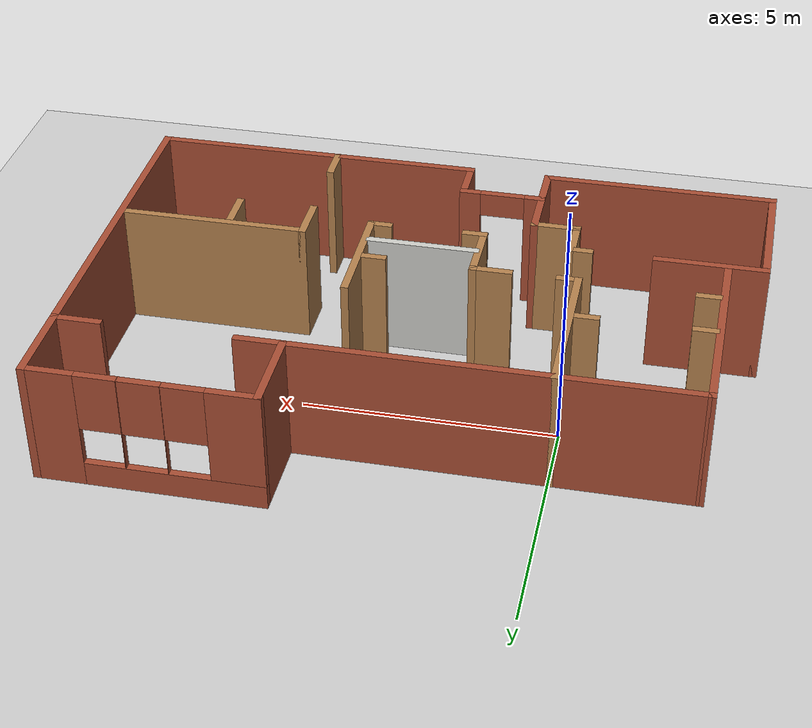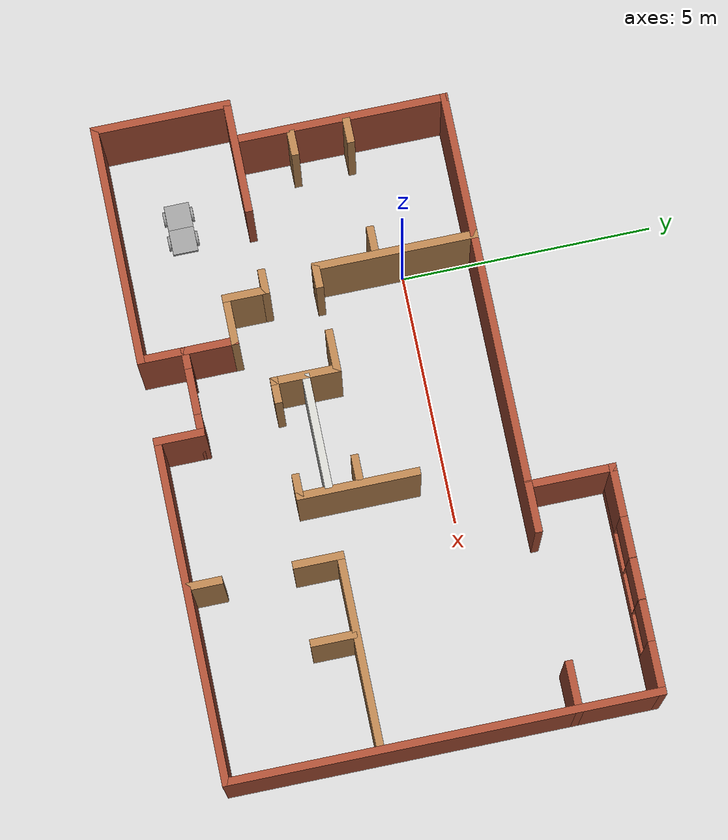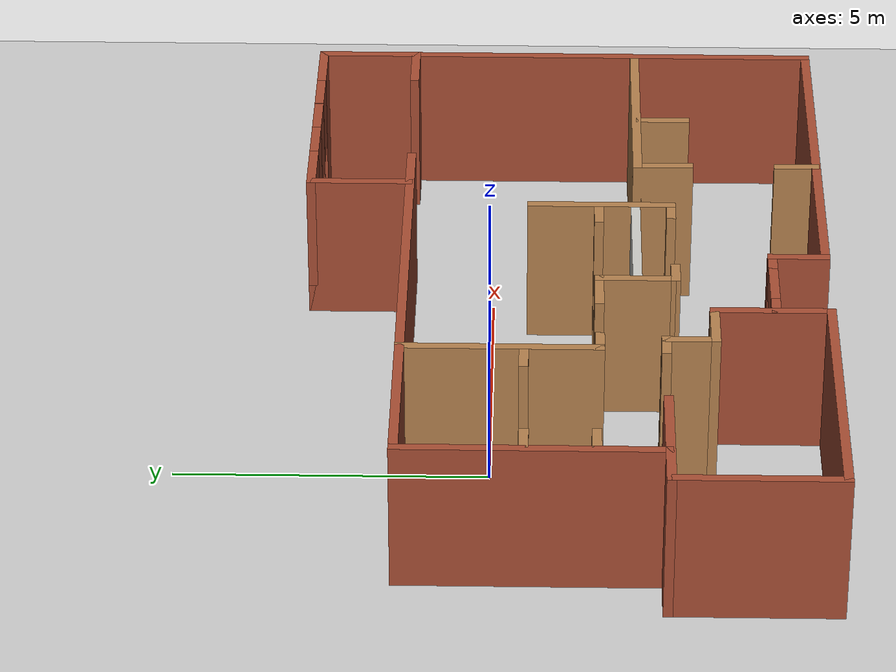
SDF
<sdf version="1.6">
 <world name="default">
  <model name="ground_plane">
   <static>1</static>
   <link name="link">
    <collision name="collision">
     <geometry><plane><normal>0 0 1</normal><size>100 100</size></plane></geometry>
     <surface>
      <contact><collide_bitmask>65535</collide_bitmask></contact>
      <friction><ode><mu>100</mu><mu2>50</mu2></ode></friction>
     </surface>
    </collision>
    <visual name="visual">
     <cast_shadows>0</cast_shadows>
     <geometry><plane><normal>0 0 1</normal><size>100 100</size></plane></geometry>
     <material>
      <script><uri>file://media/materials/scripts/gazebo.material</uri><name>Gazebo/Grey</name></script>
     </material>
    </visual>
   </link>
  </model>
  <model name="building">
   <pose>2.885 -1.15 0 0 -0 0</pose>
   <link name="Wall_0">
    <collision name="Wall_0_Collision">
     <geometry><box><size>2.25 0.15 2.5</size></box></geometry>
     <pose>0 0 1.25 0 -0 0</pose>
    </collision>
    <visual name="Wall_0_Visual">
     <pose>0 0 1.25 0 -0 0</pose>
     <geometry><box><size>2.25 0.15 2.5</size></box></geometry>
     <material>
      <script><uri>file://media/materials/scripts/gazebo.material</uri><name>Gazebo/Bricks</name></script>
      <ambient>1 1 1 1</ambient>
     </material>
     <meta><layer>0</layer></meta>
    </visual>
    <pose>-5.355 -1.58 0 0 -0 3.14159</pose>
   </link>
   <link name="Wall_1">
    <collision name="Wall_1_Collision">
     <geometry><box><size>2.75 0.15 2.5</size></box></geometry>
     <pose>0 0 1.25 0 -0 0</pose>
    </collision>
    <visual name="Wall_1_Visual">
     <pose>0 0 1.25 0 -0 0</pose>
     <geometry><box><size>2.75 0.15 2.5</size></box></geometry>
     <material>
      <script><uri>file://media/materials/scripts/gazebo.material</uri><name>Gazebo/Bricks</name></script>
      <ambient>1 1 1 1</ambient>
     </material>
     <meta><layer>0</layer></meta>
    </visual>
    <pose>-6.405 -2.88 0 0 0 -1.5708</pose>
   </link>
   <link name="Wall_11">
    <collision name="Wall_11_Collision">
     <geometry><box><size>0.5 0.15 2.5</size></box></geometry>
     <pose>0 0 1.25 0 -0 0</pose>
    </collision>
    <visual name="Wall_11_Visual">
     <pose>0 0 1.25 0 -0 0</pose>
     <geometry><box><size>0.5 0.15 2.5</size></box></geometry>
     <material>
      <script><uri>file://media/materials/scripts/gazebo.material</uri><name>Gazebo/Wood</name></script>
      <ambient>1 1 1 1</ambient>
     </material>
     <meta><layer>0</layer></meta>
    </visual>
    <pose>-5.42054 0.610454 0 0 -0 0</pose>
   </link>
   <link name="Wall_13">
    <collision name="Wall_13_Collision">
     <geometry><box><size>3.25 0.15 2.5</size></box></geometry>
     <pose>0 0 1.25 0 -0 0</pose>
    </collision>
    <visual name="Wall_13_Visual">
     <pose>0 0 1.25 0 -0 0</pose>
     <geometry><box><size>3.25 0.15 2.5</size></box></geometry>
     <material>
      <script><uri>file://media/materials/scripts/gazebo.material</uri><name>Gazebo/Wood</name></script>
      <ambient>1 1 1 1</ambient>
     </material>
     <meta><layer>0</layer></meta>
    </visual>
    <pose>-2.915 1 0 0 0 -1.5708</pose>
   </link>
   <link name="Wall_14">
    <collision name="Wall_14_Collision">
     <geometry><box><size>0.5 0.15 2.5</size></box></geometry>
     <pose>0 0 1.25 0 -0 0</pose>
    </collision>
    <visual name="Wall_14_Visual">
     <pose>0 0 1.25 0 -0 0</pose>
     <geometry><box><size>0.5 0.15 2.5</size></box></geometry>
     <material>
      <script><uri>file://media/materials/scripts/gazebo.material</uri><name>Gazebo/Wood</name></script>
      <ambient>1 1 1 1</ambient>
     </material>
     <meta><layer>0</layer></meta>
    </visual>
    <pose>-2.74 -0.55 0 0 -0 0</pose>
   </link>
   <link name="Wall_16">
    <collision name="Wall_16_Collision">
     <geometry><box><size>0.5 0.15 2.5</size></box></geometry>
     <pose>0 0 1.25 0 -0 0</pose>
    </collision>
    <visual name="Wall_16_Visual">
     <pose>0 0 1.25 0 -0 0</pose>
     <geometry><box><size>0.5 0.15 2.5</size></box></geometry>
     <material>
      <script><uri>file://media/materials/scripts/gazebo.material</uri><name>Gazebo/Wood</name></script>
      <ambient>1 1 1 1</ambient>
     </material>
     <meta><layer>0</layer></meta>
    </visual>
    <pose>-5.39507 -0.487783 0 0 -0 0</pose>
   </link>
   <link name="Wall_18">
    <collision name="Wall_18_Collision">
     <geometry><box><size>0.5 0.15 2.5</size></box></geometry>
     <pose>0 0 1.25 0 -0 0</pose>
    </collision>
    <visual name="Wall_18_Visual">
     <pose>0 0 1.25 0 -0 0</pose>
     <geometry><box><size>0.5 0.15 2.5</size></box></geometry>
     <material>
      <script><uri>file://media/materials/scripts/gazebo.material</uri><name>Gazebo/Wood</name></script>
      <ambient>1 1 1 1</ambient>
     </material>
     <meta><layer>0</layer></meta>
    </visual>
    <pose>-3.22609 0.62703 0 0 -0 3.14159</pose>
   </link>
   <link name="Wall_2">
    <collision name="Wall_2_Collision">
     <geometry><box><size>4.75 0.15 2.5</size></box></geometry>
     <pose>0 0 1.25 0 -0 0</pose>
    </collision>
    <visual name="Wall_2_Visual">
     <pose>0 0 1.25 0 -0 0</pose>
     <geometry><box><size>4.75 0.15 2.5</size></box></geometry>
     <material>
      <script><uri>file://media/materials/scripts/gazebo.material</uri><name>Gazebo/Bricks</name></script>
      <ambient>1 1 1 1</ambient>
     </material>
     <meta><layer>0</layer></meta>
    </visual>
    <pose>-4.105 -4.18 0 0 -0 0</pose>
   </link>
   <link name="Wall_20">
    <pose>-0.995 -3.32 0 0 -0 0</pose>
    <visual name="Wall_20_Visual_0">
     <pose>-0.666369 0 1.25 0 -0 0</pose>
     <geometry><box><size>0.417262 0.15 2.5</size></box></geometry>
     <material>
      <script><uri>file://media/materials/scripts/gazebo.material</uri><name>Gazebo/Bricks</name></script>
      <ambient>1 1 1 1</ambient>
     </material>
     <meta><layer>0</layer></meta>
    </visual>
    <collision name="Wall_20_Collision_0">
     <geometry><box><size>0.417262 0.15 2.5</size></box></geometry>
     <pose>-0.666369 0 1.25 0 -0 0</pose>
    </collision>
    <visual name="Wall_20_Visual_1">
     <pose>0.658631 0 1.25 0 -0 0</pose>
     <geometry><box><size>0.432738 0.15 2.5</size></box></geometry>
     <material>
      <script><uri>file://media/materials/scripts/gazebo.material</uri><name>Gazebo/Bricks</name></script>
      <ambient>1 1 1 1</ambient>
     </material>
     <meta><layer>0</layer></meta>
    </visual>
    <collision name="Wall_20_Collision_1">
     <geometry><box><size>0.432738 0.15 2.5</size></box></geometry>
     <pose>0.658631 0 1.25 0 -0 0</pose>
    </collision>
    <visual name="Wall_20_Visual_2">
     <pose>-0.007738 0 2.25 0 -0 0</pose>
     <geometry><box><size>0.9 0.15 0.5</size></box></geometry>
     <material>
      <script><uri>file://media/materials/scripts/gazebo.material</uri><name>Gazebo/Bricks</name></script>
      <ambient>1 1 1 1</ambient>
     </material>
     <meta><layer>0</layer></meta>
    </visual>
    <collision name="Wall_20_Collision_2">
     <geometry><box><size>0.9 0.15 0.5</size></box></geometry>
     <pose>-0.007738 0 2.25 0 -0 0</pose>
    </collision>
   </link>
   <link name="Wall_21">
    <collision name="Wall_21_Collision">
     <geometry><box><size>1 0.15 2.5</size></box></geometry>
     <pose>0 0 1.25 0 -0 0</pose>
    </collision>
    <visual name="Wall_21_Visual">
     <pose>0 0 1.25 0 -0 0</pose>
     <geometry><box><size>1 0.15 2.5</size></box></geometry>
     <material>
      <script><uri>file://media/materials/scripts/gazebo.material</uri><name>Gazebo/Bricks</name></script>
      <ambient>1 1 1 1</ambient>
     </material>
     <meta><layer>0</layer></meta>
    </visual>
    <pose>-0.195 -3.745 0 0 0 -1.5708</pose>
   </link>
   <link name="Wall_22">
    <collision name="Wall_22_Collision">
     <geometry><box><size>6.75 0.15 2.5</size></box></geometry>
     <pose>0 0 1.25 0 -0 0</pose>
    </collision>
    <visual name="Wall_22_Visual">
     <pose>0 0 1.25 0 -0 0</pose>
     <geometry><box><size>6.75 0.15 2.5</size></box></geometry>
     <material>
      <script><uri>file://media/materials/scripts/gazebo.material</uri><name>Gazebo/Bricks</name></script>
      <ambient>1 1 1 1</ambient>
     </material>
     <meta><layer>0</layer></meta>
    </visual>
    <pose>3.105 -4.17 0 0 -0 0</pose>
   </link>
   <link name="Wall_23">
    <collision name="Wall_23_Collision">
     <geometry><box><size>8.5 0.15 2.5</size></box></geometry>
     <pose>0 0 1.25 0 -0 0</pose>
    </collision>
    <visual name="Wall_23_Visual">
     <pose>0 0 1.25 0 -0 0</pose>
     <geometry><box><size>8.5 0.15 2.5</size></box></geometry>
     <material>
      <script><uri>file://media/materials/scripts/gazebo.material</uri><name>Gazebo/Bricks</name></script>
      <ambient>1 1 1 1</ambient>
     </material>
     <meta><layer>0</layer></meta>
    </visual>
    <pose>6.405 0.005 0 0 -0 1.5708</pose>
   </link>
   <link name="Wall_25">
    <pose>4.23 4.18 0 0 -0 3.14159</pose>
    <visual name="Wall_25_Visual_0">
     <pose>-1.7302 0 1.25 0 -0 0</pose>
     <geometry><box><size>1.0396 0.15 2.5</size></box></geometry>
     <material>
      <script><uri>file://media/materials/scripts/gazebo.material</uri><name>Gazebo/Bricks</name></script>
      <ambient>1 1 1 1</ambient>
     </material>
     <meta><layer>0</layer></meta>
    </visual>
    <collision name="Wall_25_Collision_0">
     <geometry><box><size>1.0396 0.15 2.5</size></box></geometry>
     <pose>-1.7302 0 1.25 0 -0 0</pose>
    </collision>
    <visual name="Wall_25_Visual_1">
     <pose>0.519799 0 0.25 0 -0 0</pose>
     <geometry><box><size>3.4604 0.15 0.5</size></box></geometry>
     <material>
      <script><uri>file://media/materials/scripts/gazebo.material</uri><name>Gazebo/Bricks</name></script>
      <ambient>1 1 1 1</ambient>
     </material>
     <meta><layer>0</layer></meta>
    </visual>
    <collision name="Wall_25_Collision_1">
     <geometry><box><size>3.4604 0.15 0.5</size></box></geometry>
     <pose>0.519799 0 0.25 0 -0 0</pose>
    </collision>
    <visual name="Wall_25_Visual_2">
     <pose>-0.403907 0 1.5 0 -0 0</pose>
     <geometry><box><size>0.01299 0.15 2</size></box></geometry>
     <material>
      <script><uri>file://media/materials/scripts/gazebo.material</uri><name>Gazebo/Bricks</name></script>
      <ambient>1 1 1 1</ambient>
     </material>
     <meta><layer>0</layer></meta>
    </visual>
    <collision name="Wall_25_Collision_2">
     <geometry><box><size>0.01299 0.15 2</size></box></geometry>
     <pose>-0.403907 0 1.5 0 -0 0</pose>
    </collision>
    <visual name="Wall_25_Visual_3">
     <pose>0.406241 0 1.5 0 -0 0</pose>
     <geometry><box><size>0.007305 0.15 2</size></box></geometry>
     <material>
      <script><uri>file://media/materials/scripts/gazebo.material</uri><name>Gazebo/Bricks</name></script>
      <ambient>1 1 1 1</ambient>
     </material>
     <meta><layer>0</layer></meta>
    </visual>
    <collision name="Wall_25_Collision_3">
     <geometry><box><size>0.007305 0.15 2</size></box></geometry>
     <pose>0.406241 0 1.5 0 -0 0</pose>
    </collision>
    <visual name="Wall_25_Visual_4">
     <pose>1.72995 0 1.5 0 -0 0</pose>
     <geometry><box><size>1.04011 0.15 2</size></box></geometry>
     <material>
      <script><uri>file://media/materials/scripts/gazebo.material</uri><name>Gazebo/Bricks</name></script>
      <ambient>1 1 1 1</ambient>
     </material>
     <meta><layer>0</layer></meta>
    </visual>
    <collision name="Wall_25_Collision_4">
     <geometry><box><size>1.04011 0.15 2</size></box></geometry>
     <pose>1.72995 0 1.5 0 -0 0</pose>
    </collision>
    <visual name="Wall_25_Visual_5">
     <pose>-0.810402 0 1.9 0 -0 0</pose>
     <geometry><box><size>0.8 0.15 1.2</size></box></geometry>
     <material>
      <script><uri>file://media/materials/scripts/gazebo.material</uri><name>Gazebo/Bricks</name></script>
      <ambient>1 1 1 1</ambient>
     </material>
     <meta><layer>0</layer></meta>
    </visual>
    <collision name="Wall_25_Collision_5">
     <geometry><box><size>0.8 0.15 1.2</size></box></geometry>
     <pose>-0.810402 0 1.9 0 -0 0</pose>
    </collision>
    <visual name="Wall_25_Visual_6">
     <pose>0.002588 0 1.9 0 -0 0</pose>
     <geometry><box><size>0.8 0.15 1.2</size></box></geometry>
     <material>
      <script><uri>file://media/materials/scripts/gazebo.material</uri><name>Gazebo/Bricks</name></script>
      <ambient>1 1 1 1</ambient>
     </material>
     <meta><layer>0</layer></meta>
    </visual>
    <collision name="Wall_25_Collision_6">
     <geometry><box><size>0.8 0.15 1.2</size></box></geometry>
     <pose>0.002588 0 1.9 0 -0 0</pose>
    </collision>
    <visual name="Wall_25_Visual_7">
     <pose>0.809894 0 1.9 0 -0 0</pose>
     <geometry><box><size>0.8 0.15 1.2</size></box></geometry>
     <material>
      <script><uri>file://media/materials/scripts/gazebo.material</uri><name>Gazebo/Bricks</name></script>
      <ambient>1 1 1 1</ambient>
     </material>
     <meta><layer>0</layer></meta>
    </visual>
    <collision name="Wall_25_Collision_7">
     <geometry><box><size>0.8 0.15 1.2</size></box></geometry>
     <pose>0.809894 0 1.9 0 -0 0</pose>
    </collision>
   </link>
   <link name="Wall_26">
    <collision name="Wall_26_Collision">
     <geometry><box><size>1.75 0.15 2.5</size></box></geometry>
     <pose>0 0 1.25 0 -0 0</pose>
    </collision>
    <visual name="Wall_26_Visual">
     <pose>0 0 1.25 0 -0 0</pose>
     <geometry><box><size>1.75 0.15 2.5</size></box></geometry>
     <material>
      <script><uri>file://media/materials/scripts/gazebo.material</uri><name>Gazebo/Bricks</name></script>
      <ambient>1 1 1 1</ambient>
     </material>
     <meta><layer>0</layer></meta>
    </visual>
    <pose>2.055 3.38 0 0 0 -1.5708</pose>
   </link>
   <link name="Wall_28">
    <collision name="Wall_28_Collision">
     <geometry><box><size>1 0.15 2.5</size></box></geometry>
     <pose>0 0 1.25 0 -0 0</pose>
    </collision>
    <visual name="Wall_28_Visual">
     <pose>0 0 1.25 0 -0 0</pose>
     <geometry><box><size>1 0.15 2.5</size></box></geometry>
     <material>
      <script><uri>file://media/materials/scripts/gazebo.material</uri><name>Gazebo/Bricks</name></script>
      <ambient>1 1 1 1</ambient>
     </material>
     <meta><layer>0</layer></meta>
    </visual>
    <pose>5.98 2.58 0 0 -0 3.14159</pose>
   </link>
   <link name="Wall_3">
    <collision name="Wall_3_Collision">
     <geometry><box><size>1.98 0.15 2.5</size></box></geometry>
     <pose>0 0 1.25 0 -0 0</pose>
    </collision>
    <visual name="Wall_3_Visual">
     <pose>0 0 1.25 0 -0 0</pose>
     <geometry><box><size>1.98 0.15 2.5</size></box></geometry>
     <material>
      <script><uri>file://media/materials/scripts/gazebo.material</uri><name>Gazebo/Bricks</name></script>
      <ambient>1 1 1 1</ambient>
     </material>
     <meta><layer>0</layer></meta>
    </visual>
    <pose>-1.805 -3.265 0 0 -0 1.5708</pose>
   </link>
   <link name="Wall_30">
    <collision name="Wall_30_Collision">
     <geometry><box><size>0.75 0.15 2.5</size></box></geometry>
     <pose>0 0 1.25 0 -0 0</pose>
    </collision>
    <visual name="Wall_30_Visual">
     <pose>0 0 1.25 0 -0 0</pose>
     <geometry><box><size>0.75 0.15 2.5</size></box></geometry>
     <material>
      <script><uri>file://media/materials/scripts/gazebo.material</uri><name>Gazebo/Wood</name></script>
      <ambient>1 1 1 1</ambient>
     </material>
     <meta><layer>0</layer></meta>
    </visual>
    <pose>2.655 -3.85 0 0 -0 1.5708</pose>
   </link>
   <link name="Wall_32">
    <collision name="Wall_32_Collision">
     <geometry><box><size>1 0.15 2.5</size></box></geometry>
     <pose>0 0 1.25 0 -0 0</pose>
    </collision>
    <visual name="Wall_32_Visual">
     <pose>0 0 1.25 0 -0 0</pose>
     <geometry><box><size>1 0.15 2.5</size></box></geometry>
     <material>
      <script><uri>file://media/materials/scripts/gazebo.material</uri><name>Gazebo/Wood</name></script>
      <ambient>1 1 1 1</ambient>
     </material>
     <meta><layer>0</layer></meta>
    </visual>
    <pose>2.655 -1.635 0 0 -0 1.5708</pose>
   </link>
   <link name="Wall_33">
    <collision name="Wall_33_Collision">
     <geometry><box><size>3.75 0.15 2.5</size></box></geometry>
     <pose>0 0 1.25 0 -0 0</pose>
    </collision>
    <visual name="Wall_33_Visual">
     <pose>0 0 1.25 0 -0 0</pose>
     <geometry><box><size>3.75 0.15 2.5</size></box></geometry>
     <material>
      <script><uri>file://media/materials/scripts/gazebo.material</uri><name>Gazebo/Wood</name></script>
      <ambient>1 1 1 1</ambient>
     </material>
     <meta><layer>0</layer></meta>
    </visual>
    <pose>4.455 -1.21 0 0 -0 0</pose>
   </link>
   <link name="Wall_35">
    <collision name="Wall_35_Collision">
     <geometry><box><size>0.9 0.15 2.5</size></box></geometry>
     <pose>0 0 1.25 0 -0 0</pose>
    </collision>
    <visual name="Wall_35_Visual">
     <pose>0 0 1.25 0 -0 0</pose>
     <geometry><box><size>0.9 0.15 2.5</size></box></geometry>
     <material>
      <script><uri>file://media/materials/scripts/gazebo.material</uri><name>Gazebo/Wood</name></script>
      <ambient>1 1 1 1</ambient>
     </material>
     <meta><layer>0</layer></meta>
    </visual>
    <pose>4.17527 -1.65644 0 0 0 -1.5708</pose>
   </link>
   <link name="Wall_37">
    <collision name="Wall_37_Collision">
     <geometry><box><size>0.846 0.15 2.5</size></box></geometry>
     <pose>0 0 1.25 0 -0 0</pose>
    </collision>
    <visual name="Wall_37_Visual">
     <pose>0 0 1.25 0 -0 0</pose>
     <geometry><box><size>0.846 0.15 2.5</size></box></geometry>
     <material>
      <script><uri>file://media/materials/scripts/gazebo.material</uri><name>Gazebo/Wood</name></script>
      <ambient>1 1 1 1</ambient>
     </material>
     <meta><layer>0</layer></meta>
    </visual>
    <pose>-1.233 -0.55 0 0 -0 0</pose>
   </link>
   <link name="Wall_38">
    <collision name="Wall_38_Collision">
     <geometry><box><size>1.36702 0.15 2.5</size></box></geometry>
     <pose>0 0 1.25 0 -0 0</pose>
    </collision>
    <visual name="Wall_38_Visual">
     <pose>0 0 1.25 0 -0 0</pose>
     <geometry><box><size>1.36702 0.15 2.5</size></box></geometry>
     <material>
      <script><uri>file://media/materials/scripts/gazebo.material</uri><name>Gazebo/Wood</name></script>
      <ambient>1 1 1 1</ambient>
     </material>
     <meta><layer>0</layer></meta>
    </visual>
    <pose>-0.885 -1.1585 0 0 0 -1.5708</pose>
   </link>
   <link name="Wall_39">
    <collision name="Wall_39_Collision">
     <geometry><box><size>0.509293 0.15 2.5</size></box></geometry>
     <pose>0 0 1.25 0 -0 0</pose>
    </collision>
    <visual name="Wall_39_Visual">
     <pose>0 0 1.25 0 -0 0</pose>
     <geometry><box><size>0.509293 0.15 2.5</size></box></geometry>
     <material>
      <script><uri>file://media/materials/scripts/gazebo.material</uri><name>Gazebo/Wood</name></script>
      <ambient>1 1 1 1</ambient>
     </material>
     <meta><layer>0</layer></meta>
    </visual>
    <pose>-0.705354 -1.7669 0 0 -0 0.000544</pose>
   </link>
   <link name="Wall_4">
    <collision name="Wall_4_Collision">
     <geometry><box><size>1 0.15 2.5</size></box></geometry>
     <pose>0 0 1.25 0 -0 0</pose>
    </collision>
    <visual name="Wall_4_Visual">
     <pose>0 0 1.25 0 -0 0</pose>
     <geometry><box><size>1 0.15 2.5</size></box></geometry>
     <material>
      <script><uri>file://media/materials/scripts/gazebo.material</uri><name>Gazebo/Wood</name></script>
      <ambient>1 1 1 1</ambient>
     </material>
     <meta><layer>0</layer></meta>
    </visual>
    <pose>-2.23 -2.35 0 0 -0 3.14159</pose>
   </link>
   <link name="Wall_41">
    <collision name="Wall_41_Collision">
     <geometry><box><size>0.5 0.15 2.5</size></box></geometry>
     <pose>0 0 1.25 0 -0 0</pose>
    </collision>
    <visual name="Wall_41_Visual">
     <pose>0 0 1.25 0 -0 0</pose>
     <geometry><box><size>0.5 0.15 2.5</size></box></geometry>
     <material>
      <script><uri>file://media/materials/scripts/gazebo.material</uri><name>Gazebo/Wood</name></script>
      <ambient>1 1 1 1</ambient>
     </material>
     <meta><layer>0</layer></meta>
    </visual>
    <pose>1.20247 -1.73362 0 0 -0 0</pose>
   </link>
   <link name="Wall_42">
    <collision name="Wall_42_Collision">
     <geometry><box><size>2.40993 0.15 2.5</size></box></geometry>
     <pose>0 0 1.25 0 -0 0</pose>
    </collision>
    <visual name="Wall_42_Visual">
     <pose>0 0 1.25 0 -0 0</pose>
     <geometry><box><size>2.40993 0.15 2.5</size></box></geometry>
     <material>
      <script><uri>file://media/materials/scripts/gazebo.material</uri><name>Gazebo/Wood</name></script>
      <ambient>1 1 1 1</ambient>
     </material>
     <meta><layer>0</layer></meta>
    </visual>
    <pose>1.38031 -0.603662 0 0 -0 1.57331</pose>
   </link>
   <link name="Wall_44">
    <collision name="Wall_44_Collision">
     <geometry><box><size>2.25 0.15 2.5</size></box></geometry>
     <pose>0 0 1.25 0 -0 0</pose>
    </collision>
    <visual name="Wall_44_Visual">
     <pose>0 0 1.25 0 -0 0</pose>
     <geometry><box><size>2.25 0.15 2.5</size></box></geometry>
     <material>
      <script><uri>file://media/materials/scripts/gazebo.material</uri><name>Gazebo/CeilingTiled</name></script>
      <ambient>1 1 1 1</ambient>
     </material>
     <meta><layer>0</layer></meta>
    </visual>
    <pose>0.223792 -1.16 0 0 -0 0</pose>
   </link>
   <link name="Wall_46">
    <collision name="Wall_46_Collision">
     <geometry><box><size>0.5 0.15 2.5</size></box></geometry>
     <pose>0 0 1.25 0 -0 0</pose>
    </collision>
    <visual name="Wall_46_Visual">
     <pose>0 0 1.25 0 -0 0</pose>
     <geometry><box><size>0.5 0.15 2.5</size></box></geometry>
     <material>
      <script><uri>file://media/materials/scripts/gazebo.material</uri><name>Gazebo/Wood</name></script>
      <ambient>1 1 1 1</ambient>
     </material>
     <meta><layer>0</layer></meta>
    </visual>
    <pose>1.06568 -0.560964 0 0 -0 3.14159</pose>
   </link>
   <link name="Wall_5">
    <collision name="Wall_5_Collision">
     <geometry><box><size>0.92 0.15 2.5</size></box></geometry>
     <pose>0 0 1.25 0 -0 0</pose>
    </collision>
    <visual name="Wall_5_Visual">
     <pose>0 0 1.25 0 -0 0</pose>
     <geometry><box><size>0.92 0.15 2.5</size></box></geometry>
     <material>
      <script><uri>file://media/materials/scripts/gazebo.material</uri><name>Gazebo/Wood</name></script>
      <ambient>1 1 1 1</ambient>
     </material>
     <meta><layer>0</layer></meta>
    </visual>
    <pose>-2.655 -1.965 0 0 -0 1.5708</pose>
   </link>
   <link name="Wall_6">
    <collision name="Wall_6_Collision">
     <geometry><box><size>0.493495 0.15 2.5</size></box></geometry>
     <pose>0 0 1.25 0 -0 0</pose>
    </collision>
    <visual name="Wall_6_Visual">
     <pose>0 0 1.25 0 -0 0</pose>
     <geometry><box><size>0.493495 0.15 2.5</size></box></geometry>
     <material>
      <script><uri>file://media/materials/scripts/gazebo.material</uri><name>Gazebo/Wood</name></script>
      <ambient>1 1 1 1</ambient>
     </material>
     <meta><layer>0</layer></meta>
    </visual>
    <pose>-2.8265 -1.58 0 0 -0 3.14159</pose>
   </link>
   <link name="Wall_8">
    <collision name="Wall_8_Collision">
     <geometry><box><size>4.25 0.15 2.5</size></box></geometry>
     <pose>0 0 1.25 0 -0 0</pose>
    </collision>
    <visual name="Wall_8_Visual">
     <pose>0 0 1.25 0 -0 0</pose>
     <geometry><box><size>4.25 0.15 2.5</size></box></geometry>
     <material>
      <script><uri>file://media/materials/scripts/gazebo.material</uri><name>Gazebo/Bricks</name></script>
      <ambient>1 1 1 1</ambient>
     </material>
     <meta><layer>0</layer></meta>
    </visual>
    <pose>-5.685 0.5 0 0 -0 1.5708</pose>
   </link>
   <link name="Wall_9">
    <collision name="Wall_9_Collision">
     <geometry><box><size>8.75 0.15 2.5</size></box></geometry>
     <pose>0 0 1.25 0 -0 0</pose>
    </collision>
    <visual name="Wall_9_Visual">
     <pose>0 0 1.25 0 -0 0</pose>
     <geometry><box><size>8.75 0.15 2.5</size></box></geometry>
     <material>
      <script><uri>file://media/materials/scripts/gazebo.material</uri><name>Gazebo/Bricks</name></script>
      <ambient>1 1 1 1</ambient>
     </material>
     <meta><layer>0</layer></meta>
    </visual>
    <pose>-1.385 2.55 0 0 -0 0</pose>
   </link>
   <static>1</static>
  </model>
  <model name="cart_clone">
   <link name="link_0_clone">
    <pose>-0.250001 -0 0 0 -0 0</pose>
    <inertial>
     <mass>1</mass>
     <inertia>
      <ixx>0.166667</ixx>
      <ixy>0</ixy>
      <ixz>0</ixz>
      <iyy>0.166667</iyy>
      <iyz>0</iyz>
      <izz>0.166667</izz>
     </inertia>
    </inertial>
    <visual name="visual">
     <geometry><box><size>0.5 0.5 0.1</size></box></geometry>
     <material>
      <lighting>1</lighting>
      <script><uri>file://media/materials/scripts/gazebo.material</uri><name>Gazebo/Grey</name></script>
      <shader type="pixel"><normal_map>__default__</normal_map></shader>
      <ambient>0.3 0.3 0.3 1</ambient>
      <diffuse>0.7 0.7 0.7 1</diffuse>
      <specular>0.01 0.01 0.01 1</specular>
      <emissive>0 0 0 1</emissive>
     </material>
    </visual>
    <collision name="collision">
     <geometry><box><size>0.5 0.5 0.1</size></box></geometry>
     <surface>
      <friction>
       <ode><mu>1</mu><mu2>1</mu2><fdir1>0 0 0</fdir1><slip1>0</slip1><slip2>0</slip2></ode>
       <torsional>
        <coefficient>1</coefficient>
        <patch_radius>0</patch_radius>
        <surface_radius>0</surface_radius>
        <use_patch_radius>1</use_patch_radius>
        <ode><slip>0</slip></ode>
       </torsional>
      </friction>
      <bounce><restitution_coefficient>0</restitution_coefficient><threshold>1e+06</threshold></bounce>
      <contact>
       <collide_without_contact>0</collide_without_contact>
       <collide_without_contact_bitmask>1</collide_without_contact_bitmask>
       <collide_bitmask>1</collide_bitmask>
       <ode>
        <soft_cfm>0</soft_cfm>
        <soft_erp>0.2</soft_erp>
        <kp>1e+13</kp>
        <kd>1</kd>
        <max_vel>0.01</max_vel>
        <min_depth>0</min_depth>
       </ode>
       <bullet>
        <split_impulse>1</split_impulse>
        <split_impulse_penetration_threshold>-0.01</split_impulse_penetration_threshold>
        <soft_cfm>0</soft_cfm>
        <soft_erp>0.2</soft_erp>
        <kp>1e+13</kp>
        <kd>1</kd>
       </bullet>
      </contact>
     </surface>
    </collision>
   </link>
   <link name="link_0_clone_0">
    <pose>0.249999 -0 0 0 -0 0</pose>
    <inertial>
     <mass>1</mass>
     <inertia>
      <ixx>0.166667</ixx>
      <ixy>0</ixy>
      <ixz>0</ixz>
      <iyy>0.166667</iyy>
      <iyz>0</iyz>
      <izz>0.166667</izz>
     </inertia>
    </inertial>
    <visual name="visual">
     <geometry><box><size>0.5 0.5 0.1</size></box></geometry>
     <material>
      <lighting>1</lighting>
      <script><uri>file://media/materials/scripts/gazebo.material</uri><name>Gazebo/Grey</name></script>
      <shader type="pixel"><normal_map>__default__</normal_map></shader>
      <ambient>0.3 0.3 0.3 1</ambient>
      <diffuse>0.7 0.7 0.7 1</diffuse>
      <specular>0.01 0.01 0.01 1</specular>
      <emissive>0 0 0 1</emissive>
     </material>
    </visual>
    <collision name="collision">
     <geometry><box><size>0.5 0.5 0.1</size></box></geometry>
     <surface>
      <friction>
       <ode><mu>1</mu><mu2>1</mu2><fdir1>0 0 0</fdir1><slip1>0</slip1><slip2>0</slip2></ode>
       <torsional>
        <coefficient>1</coefficient>
        <patch_radius>0</patch_radius>
        <surface_radius>0</surface_radius>
        <use_patch_radius>1</use_patch_radius>
        <ode><slip>0</slip></ode>
       </torsional>
      </friction>
      <bounce><restitution_coefficient>0</restitution_coefficient><threshold>1e+06</threshold></bounce>
      <contact>
       <collide_without_contact>0</collide_without_contact>
       <collide_without_contact_bitmask>1</collide_without_contact_bitmask>
       <collide_bitmask>1</collide_bitmask>
       <ode>
        <soft_cfm>0</soft_cfm>
        <soft_erp>0.2</soft_erp>
        <kp>1e+13</kp>
        <kd>1</kd>
        <max_vel>0.01</max_vel>
        <min_depth>0</min_depth>
       </ode>
       <bullet>
        <split_impulse>1</split_impulse>
        <split_impulse_penetration_threshold>-0.01</split_impulse_penetration_threshold>
        <soft_cfm>0</soft_cfm>
        <soft_erp>0.2</soft_erp>
        <kp>1e+13</kp>
        <kd>1</kd>
       </bullet>
      </contact>
     </surface>
    </collision>
   </link>
   <link name="link_1_clone">
    <pose>-0.250001 -0.275119 0 0 -0 0</pose>
    <inertial>
     <mass>1</mass>
     <inertia><ixx>0.145833</ixx><ixy>0</ixy><ixz>0</ixz><iyy>0.145833</iyy><iyz>0</iyz><izz>0.125</izz></inertia>
    </inertial>
    <visual name="visual">
     <pose>0 0 0 1.57 -0 0</pose>
     <geometry><cylinder><radius>0.15</radius><length>0.05</length></cylinder></geometry>
     <material>
      <lighting>1</lighting>
      <script><uri>file://media/materials/scripts/gazebo.material</uri><name>Gazebo/Grey</name></script>
      <shader type="pixel"><normal_map>__default__</normal_map></shader>
      <ambient>0.3 0.3 0.3 1</ambient>
      <diffuse>0.7 0.7 0.7 1</diffuse>
      <specular>0.01 0.01 0.01 1</specular>
      <emissive>0 0 0 1</emissive>
     </material>
    </visual>
    <collision name="collision">
     <pose>0 0 0 1.5707 -0 0</pose>
     <geometry><cylinder><radius>0.15</radius><length>0.05</length></cylinder></geometry>
     <surface>
      <friction>
       <ode><mu>1</mu><mu2>1</mu2><fdir1>0 0 0</fdir1><slip1>0</slip1><slip2>0</slip2></ode>
       <torsional>
        <coefficient>1</coefficient>
        <patch_radius>0</patch_radius>
        <surface_radius>0</surface_radius>
        <use_patch_radius>1</use_patch_radius>
        <ode><slip>0</slip></ode>
       </torsional>
      </friction>
      <bounce><restitution_coefficient>0</restitution_coefficient><threshold>1e+06</threshold></bounce>
      <contact>
       <collide_without_contact>0</collide_without_contact>
       <collide_without_contact_bitmask>1</collide_without_contact_bitmask>
       <collide_bitmask>1</collide_bitmask>
       <ode>
        <soft_cfm>0</soft_cfm>
        <soft_erp>0.2</soft_erp>
        <kp>1e+13</kp>
        <kd>1</kd>
        <max_vel>0.01</max_vel>
        <min_depth>0</min_depth>
       </ode>
       <bullet>
        <split_impulse>1</split_impulse>
        <split_impulse_penetration_threshold>-0.01</split_impulse_penetration_threshold>
        <soft_cfm>0</soft_cfm>
        <soft_erp>0.2</soft_erp>
        <kp>1e+13</kp>
        <kd>1</kd>
       </bullet>
      </contact>
     </surface>
    </collision>
   </link>
   <link name="link_1_clone_0">
    <pose>-0.250001 0.275119 0 0 -0 0</pose>
    <inertial>
     <mass>1</mass>
     <inertia><ixx>0.145833</ixx><ixy>0</ixy><ixz>0</ixz><iyy>0.145833</iyy><iyz>0</iyz><izz>0.125</izz></inertia>
    </inertial>
    <visual name="visual">
     <pose>0 0 0 1.57 -0 0</pose>
     <geometry><cylinder><radius>0.15</radius><length>0.05</length></cylinder></geometry>
     <material>
      <lighting>1</lighting>
      <script><uri>file://media/materials/scripts/gazebo.material</uri><name>Gazebo/Grey</name></script>
      <shader type="pixel"><normal_map>__default__</normal_map></shader>
      <ambient>0.3 0.3 0.3 1</ambient>
      <diffuse>0.7 0.7 0.7 1</diffuse>
      <specular>0.01 0.01 0.01 1</specular>
      <emissive>0 0 0 1</emissive>
     </material>
    </visual>
    <collision name="collision">
     <pose>0 0 0 1.5707 -0 0</pose>
     <geometry><cylinder><radius>0.15</radius><length>0.05</length></cylinder></geometry>
     <surface>
      <friction>
       <ode><mu>1</mu><mu2>1</mu2><fdir1>0 0 0</fdir1><slip1>0</slip1><slip2>0</slip2></ode>
       <torsional>
        <coefficient>1</coefficient>
        <patch_radius>0</patch_radius>
        <surface_radius>0</surface_radius>
        <use_patch_radius>1</use_patch_radius>
        <ode><slip>0</slip></ode>
       </torsional>
      </friction>
      <bounce><restitution_coefficient>0</restitution_coefficient><threshold>1e+06</threshold></bounce>
      <contact>
       <collide_without_contact>0</collide_without_contact>
       <collide_without_contact_bitmask>1</collide_without_contact_bitmask>
       <collide_bitmask>1</collide_bitmask>
       <ode>
        <soft_cfm>0</soft_cfm>
        <soft_erp>0.2</soft_erp>
        <kp>1e+13</kp>
        <kd>1</kd>
        <max_vel>0.01</max_vel>
        <min_depth>0</min_depth>
       </ode>
       <bullet>
        <split_impulse>1</split_impulse>
        <split_impulse_penetration_threshold>-0.01</split_impulse_penetration_threshold>
        <soft_cfm>0</soft_cfm>
        <soft_erp>0.2</soft_erp>
        <kp>1e+13</kp>
        <kd>1</kd>
       </bullet>
      </contact>
     </surface>
    </collision>
   </link>
   <link name="link_1_clone_1">
    <pose>0.249999 -0.275119 0 0 -0 0</pose>
    <inertial>
     <mass>1</mass>
     <inertia><ixx>0.145833</ixx><ixy>0</ixy><ixz>0</ixz><iyy>0.145833</iyy><iyz>0</iyz><izz>0.125</izz></inertia>
    </inertial>
    <visual name="visual">
     <pose>0 0 0 1.57 -0 0</pose>
     <geometry><cylinder><radius>0.15</radius><length>0.05</length></cylinder></geometry>
     <material>
      <lighting>1</lighting>
      <script><uri>file://media/materials/scripts/gazebo.material</uri><name>Gazebo/Grey</name></script>
      <shader type="pixel"><normal_map>__default__</normal_map></shader>
      <ambient>0.3 0.3 0.3 1</ambient>
      <diffuse>0.7 0.7 0.7 1</diffuse>
      <specular>0.01 0.01 0.01 1</specular>
      <emissive>0 0 0 1</emissive>
     </material>
    </visual>
    <collision name="collision">
     <pose>0 0 0 1.5707 -0 0</pose>
     <geometry><cylinder><radius>0.15</radius><length>0.05</length></cylinder></geometry>
     <surface>
      <friction>
       <ode><mu>1</mu><mu2>1</mu2><fdir1>0 0 0</fdir1><slip1>0</slip1><slip2>0</slip2></ode>
       <torsional>
        <coefficient>1</coefficient>
        <patch_radius>0</patch_radius>
        <surface_radius>0</surface_radius>
        <use_patch_radius>1</use_patch_radius>
        <ode><slip>0</slip></ode>
       </torsional>
      </friction>
      <bounce><restitution_coefficient>0</restitution_coefficient><threshold>1e+06</threshold></bounce>
      <contact>
       <collide_without_contact>0</collide_without_contact>
       <collide_without_contact_bitmask>1</collide_without_contact_bitmask>
       <collide_bitmask>1</collide_bitmask>
       <ode>
        <soft_cfm>0</soft_cfm>
        <soft_erp>0.2</soft_erp>
        <kp>1e+13</kp>
        <kd>1</kd>
        <max_vel>0.01</max_vel>
        <min_depth>0</min_depth>
       </ode>
       <bullet>
        <split_impulse>1</split_impulse>
        <split_impulse_penetration_threshold>-0.01</split_impulse_penetration_threshold>
        <soft_cfm>0</soft_cfm>
        <soft_erp>0.2</soft_erp>
        <kp>1e+13</kp>
        <kd>1</kd>
       </bullet>
      </contact>
     </surface>
    </collision>
   </link>
   <link name="link_1_clone_2">
    <pose>0.249999 0.275119 0 0 -0 0</pose>
    <inertial>
     <mass>1</mass>
     <inertia><ixx>0.145833</ixx><ixy>0</ixy><ixz>0</ixz><iyy>0.145833</iyy><iyz>0</iyz><izz>0.125</izz></inertia>
    </inertial>
    <visual name="visual">
     <pose>0 0 0 1.57 -0 0</pose>
     <geometry><cylinder><radius>0.15</radius><length>0.05</length></cylinder></geometry>
     <material>
      <lighting>1</lighting>
      <script><uri>file://media/materials/scripts/gazebo.material</uri><name>Gazebo/Grey</name></script>
      <shader type="pixel"><normal_map>__default__</normal_map></shader>
      <ambient>0.3 0.3 0.3 1</ambient>
      <diffuse>0.7 0.7 0.7 1</diffuse>
      <specular>0.01 0.01 0.01 1</specular>
      <emissive>0 0 0 1</emissive>
     </material>
    </visual>
    <collision name="collision">
     <pose>0 0 0 1.5707 -0 0</pose>
     <geometry><cylinder><radius>0.15</radius><length>0.05</length></cylinder></geometry>
     <surface>
      <friction>
       <ode><mu>1</mu><mu2>1</mu2><fdir1>0 0 0</fdir1><slip1>0</slip1><slip2>0</slip2></ode>
       <torsional>
        <coefficient>1</coefficient>
        <patch_radius>0</patch_radius>
        <surface_radius>0</surface_radius>
        <use_patch_radius>1</use_patch_radius>
        <ode><slip>0</slip></ode>
       </torsional>
      </friction>
      <bounce><restitution_coefficient>0</restitution_coefficient><threshold>1e+06</threshold></bounce>
      <contact>
       <collide_without_contact>0</collide_without_contact>
       <collide_without_contact_bitmask>1</collide_without_contact_bitmask>
       <collide_bitmask>1</collide_bitmask>
       <ode>
        <soft_cfm>0</soft_cfm>
        <soft_erp>0.2</soft_erp>
        <kp>1e+13</kp>
        <kd>1</kd>
        <max_vel>0.01</max_vel>
        <min_depth>0</min_depth>
       </ode>
       <bullet>
        <split_impulse>1</split_impulse>
        <split_impulse_penetration_threshold>-0.01</split_impulse_penetration_threshold>
        <soft_cfm>0</soft_cfm>
        <soft_erp>0.2</soft_erp>
        <kp>1e+13</kp>
        <kd>1</kd>
       </bullet>
      </contact>
     </surface>
    </collision>
   </link>
   <joint name="link_0_clone_0_JOINT_5" type="revolute">
    <parent>link_0_clone_0</parent>
    <child>link_1_clone_1</child>
    <axis>
     <xyz>1 0 0</xyz>
     <use_parent_model_frame>0</use_parent_model_frame>
     <limit>
      <lower>-1.79769e+308</lower>
      <upper>1.79769e+308</upper>
      <effort>-1</effort>
      <velocity>-1</velocity>
     </limit>
     <dynamics>
      <spring_reference>0</spring_reference>
      <spring_stiffness>0</spring_stiffness>
      <damping>0</damping>
     </dynamics>
    </axis>
    <physics>
     <ode><limit><cfm>0</cfm><erp>0.2</erp></limit><suspension><cfm>0</cfm><erp>0.2</erp></suspension></ode>
    </physics>
   </joint>
   <joint name="link_0_clone_0_JOINT_6" type="revolute">
    <parent>link_0_clone_0</parent>
    <child>link_1_clone_2</child>
    <axis>
     <xyz>1 0 0</xyz>
     <use_parent_model_frame>0</use_parent_model_frame>
     <limit>
      <lower>-1.79769e+308</lower>
      <upper>1.79769e+308</upper>
      <effort>-1</effort>
      <velocity>-1</velocity>
     </limit>
     <dynamics>
      <spring_reference>0</spring_reference>
      <spring_stiffness>0</spring_stiffness>
      <damping>0</damping>
     </dynamics>
    </axis>
    <physics>
     <ode><limit><cfm>0</cfm><erp>0.2</erp></limit><suspension><cfm>0</cfm><erp>0.2</erp></suspension></ode>
    </physics>
   </joint>
   <joint name="link_0_clone_JOINT_1" type="revolute">
    <parent>link_0_clone</parent>
    <child>link_1_clone</child>
    <axis>
     <xyz>1 0 0</xyz>
     <use_parent_model_frame>0</use_parent_model_frame>
     <limit>
      <lower>-1.79769e+308</lower>
      <upper>1.79769e+308</upper>
      <effort>-1</effort>
      <velocity>-1</velocity>
     </limit>
     <dynamics>
      <spring_reference>0</spring_reference>
      <spring_stiffness>0</spring_stiffness>
      <damping>0</damping>
     </dynamics>
    </axis>
    <physics>
     <ode><limit><cfm>0</cfm><erp>0.2</erp></limit><suspension><cfm>0</cfm><erp>0.2</erp></suspension></ode>
    </physics>
   </joint>
   <joint name="link_0_clone_JOINT_2" type="revolute">
    <parent>link_0_clone</parent>
    <child>link_1_clone_0</child>
    <axis>
     <xyz>1 0 0</xyz>
     <use_parent_model_frame>0</use_parent_model_frame>
     <limit>
      <lower>-1.79769e+308</lower>
      <upper>1.79769e+308</upper>
      <effort>-1</effort>
      <velocity>-1</velocity>
     </limit>
     <dynamics>
      <spring_reference>0</spring_reference>
      <spring_stiffness>0</spring_stiffness>
      <damping>0</damping>
     </dynamics>
    </axis>
    <physics>
     <ode><limit><cfm>0</cfm><erp>0.2</erp></limit><suspension><cfm>0</cfm><erp>0.2</erp></suspension></ode>
    </physics>
   </joint>
   <joint name="link_0_clone_JOINT_4" type="fixed">
    <parent>link_0_clone</parent>
    <child>link_0_clone_0</child>
    <physics>
     <ode><limit><cfm>0</cfm><erp>0.2</erp></limit><suspension><cfm>0</cfm><erp>0.2</erp></suspension></ode>
    </physics>
   </joint>
   <static>0</static>
   <pose>-1.85647 -4.09586 0.149997 -6e-06 -0 0.000695</pose>
  </model>
 </world>
</sdf>
